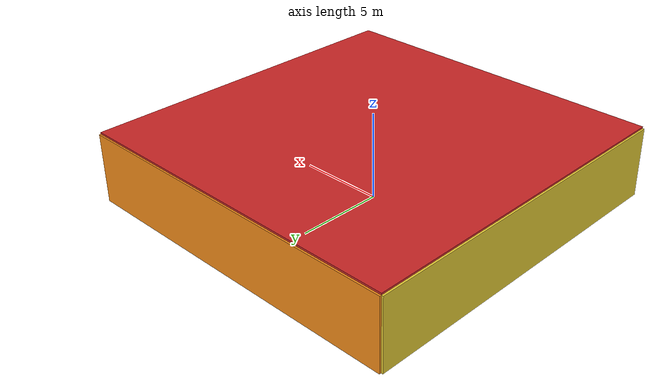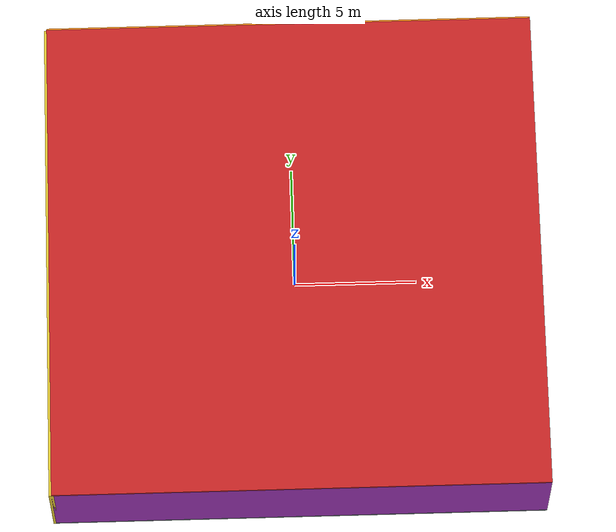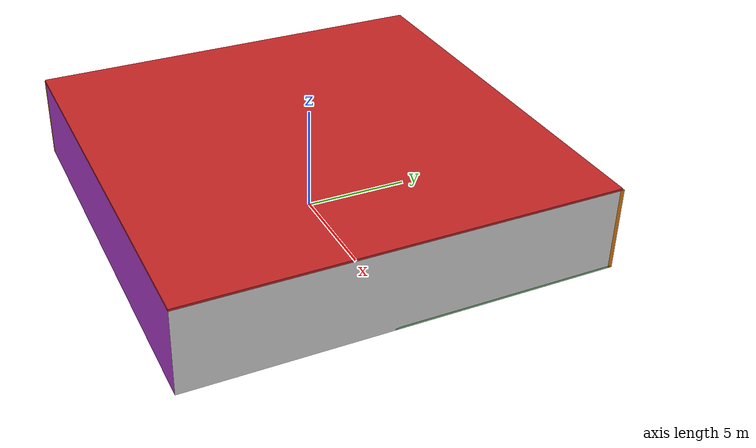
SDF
<sdf version="1.4">
 <world name="default">
  <physics type="ode">
   <max_step_size>0.001</max_step_size>
   <real_time_factor>1</real_time_factor>
   <real_time_update_rate>1000</real_time_update_rate>
   <gravity>0 0 -9.8</gravity>
  </physics>
  <scene><ambient>0.4 0.4 0.4 1</ambient><background>0.7 0.7 0.7 1</background><shadows>1</shadows></scene>
  <model name="Surrounding">
   <static>1</static>
   <link name="Ceiling">
    <collision name="Ceiling_Collision"><geometry><box><size>20 20 0.1</size></box></geometry></collision>
    <visual name="Ceiling_Visual">
     <geometry><box><size>20 20 0.1</size></box></geometry>
     <material>
      <script><uri>file://media/materials/scripts/gazebo.material</uri><name>Gazebo/Red</name></script>
     </material>
    </visual>
    <pose>0 0 4.05 0 0 0</pose>
   </link>
   <link name="Wall_South">
    <collision name="Wall_South_Collision">
     <geometry><box><size>20 0 4</size></box></geometry>
     <pose>0 0 2 0 -0 0</pose>
    </collision>
    <visual name="Wall_South_Visual">
     <pose>0 0 2 0 -0 0</pose>
     <geometry><box><size>20 0 4</size></box></geometry>
     <material>
      <script><uri>file://media/materials/scripts/gazebo.material</uri><name>Gazebo/PurpleGlow</name></script>
     </material>
    </visual>
    <velocity_decay><linear>0</linear><angular>0</angular></velocity_decay>
    <pose>0 -10 0 0 -0 0</pose>
   </link>
   <link name="Wall_East">
    <collision name="Wall_21_Collision">
     <geometry><box><size>20 0 4</size></box></geometry>
     <pose>0 0 2 0 -0 0</pose>
    </collision>
    <visual name="Wall_21_Visual">
     <pose>0 0 2 0 -0 0</pose>
     <geometry><box><size>20 0 4</size></box></geometry>
     <material>
      <script><uri>file://media/materials/scripts/gazebo.material</uri><name>Gazebo/White</name></script>
     </material>
    </visual>
    <velocity_decay><linear>0</linear><angular>0</angular></velocity_decay>
    <pose>10 0 0 0 -0 1.5708</pose>
   </link>
   <link name="Wall_North">
    <collision name="Wall_22_Collision">
     <geometry><box><size>20 0.2 4</size></box></geometry>
     <pose>0 0 2 0 -0 0</pose>
    </collision>
    <visual name="Wall_22_Visual">
     <pose>0 0 2 0 -0 0</pose>
     <geometry><box><size>20 0.2 4</size></box></geometry>
     <material>
      <script><uri>file://media/materials/scripts/gazebo.material</uri><name>Gazebo/Orange</name></script>
     </material>
    </visual>
    <velocity_decay><linear>0</linear><angular>0</angular></velocity_decay>
    <pose>0 10 0 0 -0 0</pose>
   </link>
   <link name="Wall_West">
    <collision name="Wall_23_Collision">
     <geometry><box><size>20 0.2 4</size></box></geometry>
     <pose>0 0 2 0 -0 0</pose>
    </collision>
    <visual name="Wall_23_Visual">
     <pose>0 0 2 0 -0 0</pose>
     <geometry><box><size>20 0.2 4</size></box></geometry>
     <material>
      <script><uri>file://media/materials/scripts/gazebo.material</uri><name>Gazebo/ZincYellow</name></script>
     </material>
    </visual>
    <velocity_decay><linear>0</linear><angular>0</angular></velocity_decay>
    <pose>-10 0 0 0 0 -1.5708</pose>
   </link>
   <link name="Ground_link">
    <collision name="collision">
     <pose>0 0 .05 0 -0 0</pose>
     <geometry><box><size>20 20 0.1</size></box></geometry>
    </collision>
    <visual name="visual">
     <pose>0 0 .05 0 -0 0</pose>
     <geometry><box><size>20 20 0.1</size></box></geometry>
     <material>
      <script><uri>file://media/materials/scripts/gazebo.material</uri><name>Gazebo/GreenTransparent</name></script>
     </material>
    </visual>
   </link>
   <static>1</static>
  </model>
  <spherical_coordinates>
   <surface_model>EARTH_WGS84</surface_model>
   <latitude_deg>0</latitude_deg>
   <longitude_deg>0</longitude_deg>
   <elevation>0</elevation>
   <heading_deg>0</heading_deg>
  </spherical_coordinates>
  <light name="lightball_0" type="diffuse">
   <diffuse>0.8 0.8 0.8 1</diffuse>
   <specular>0.2 0.2 0.2 1</specular>
   <attenuation>
    <range>100</range>
    <constant>0.7</constant>
    <linear>0.01</linear>
    <quadratic>0.001</quadratic>
   </attenuation>
   <direction>-0.5 0.1 -0.9</direction>
   <pose>-1.16303491898 7.35125877605 2.83278229288 0 0 0</pose>
  </light>
  <light name="lightball_1" type="diffuse">
   <diffuse>0.8 0.8 0.8 1</diffuse>
   <specular>0.2 0.2 0.2 1</specular>
   <attenuation>
    <range>100</range>
    <constant>0.7</constant>
    <linear>0.01</linear>
    <quadratic>0.001</quadratic>
   </attenuation>
   <direction>-0.5 0.1 -0.9</direction>
   <pose>5.98411770264 3.14699670936 3.88017580726 0 0 0</pose>
  </light>
  <light name="lightball_2" type="diffuse">
   <diffuse>0.8 0.8 0.8 1</diffuse>
   <specular>0.2 0.2 0.2 1</specular>
   <attenuation>
    <range>100</range>
    <constant>0.7</constant>
    <linear>0.01</linear>
    <quadratic>0.001</quadratic>
   </attenuation>
   <direction>-0.5 0.1 -0.9</direction>
   <pose>2.58094430508 -5.77512515647 2.2123158266 0 0 0</pose>
  </light>
  <light name="lightball_3" type="diffuse">
   <diffuse>0.8 0.8 0.8 1</diffuse>
   <specular>0.2 0.2 0.2 1</specular>
   <attenuation>
    <range>100</range>
    <constant>0.7</constant>
    <linear>0.01</linear>
    <quadratic>0.001</quadratic>
   </attenuation>
   <direction>-0.5 0.1 -0.9</direction>
   <pose>3.10174319447 9.0668023358 1.74289094701 0 0 0</pose>
  </light>
  <light name="lightball_4" type="diffuse">
   <diffuse>0.8 0.8 0.8 1</diffuse>
   <specular>0.2 0.2 0.2 1</specular>
   <attenuation>
    <range>100</range>
    <constant>0.7</constant>
    <linear>0.01</linear>
    <quadratic>0.001</quadratic>
   </attenuation>
   <direction>-0.5 0.1 -0.9</direction>
   <pose>-4.37765519419 3.06608582307 2.0691743888 0 0 0</pose>
  </light>
  <light name="lightball_5" type="diffuse">
   <diffuse>0.8 0.8 0.8 1</diffuse>
   <specular>0.2 0.2 0.2 1</specular>
   <attenuation>
    <range>100</range>
    <constant>0.7</constant>
    <linear>0.01</linear>
    <quadratic>0.001</quadratic>
   </attenuation>
   <direction>-0.5 0.1 -0.9</direction>
   <pose>-6.85911430937 -4.81520291047 2.95700109602 0 0 0</pose>
  </light>
  <light name="lightball_6" type="diffuse">
   <diffuse>0.8 0.8 0.8 1</diffuse>
   <specular>0.2 0.2 0.2 1</specular>
   <attenuation>
    <range>100</range>
    <constant>0.7</constant>
    <linear>0.01</linear>
    <quadratic>0.001</quadratic>
   </attenuation>
   <direction>-0.5 0.1 -0.9</direction>
   <pose>-9.39248016083 -0.923612164241 1.49611869799 0 0 0</pose>
  </light>
  <light name="lightball_7" type="diffuse">
   <diffuse>0.8 0.8 0.8 1</diffuse>
   <specular>0.2 0.2 0.2 1</specular>
   <attenuation>
    <range>100</range>
    <constant>0.7</constant>
    <linear>0.01</linear>
    <quadratic>0.001</quadratic>
   </attenuation>
   <direction>-0.5 0.1 -0.9</direction>
   <pose>-6.37114798841 -5.62696637903 1.64507482913 0 0 0</pose>
  </light>
  <light name="lightball_8" type="diffuse">
   <diffuse>0.8 0.8 0.8 1</diffuse>
   <specular>0.2 0.2 0.2 1</specular>
   <attenuation>
    <range>100</range>
    <constant>0.7</constant>
    <linear>0.01</linear>
    <quadratic>0.001</quadratic>
   </attenuation>
   <direction>-0.5 0.1 -0.9</direction>
   <pose>1.63007381941 3.48228770335 1.39783686526 0 0 0</pose>
  </light>
  <light name="lightball_9" type="diffuse">
   <diffuse>0.8 0.8 0.8 1</diffuse>
   <specular>0.2 0.2 0.2 1</specular>
   <attenuation>
    <range>100</range>
    <constant>0.7</constant>
    <linear>0.01</linear>
    <quadratic>0.001</quadratic>
   </attenuation>
   <direction>-0.5 0.1 -0.9</direction>
   <pose>-9.16545845252 -6.01819965287 3.17058905322 0 0 0</pose>
  </light>
  <light name="lightball_10" type="diffuse">
   <diffuse>0.8 0.8 0.8 1</diffuse>
   <specular>0.2 0.2 0.2 1</specular>
   <attenuation>
    <range>100</range>
    <constant>0.7</constant>
    <linear>0.01</linear>
    <quadratic>0.001</quadratic>
   </attenuation>
   <direction>-0.5 0.1 -0.9</direction>
   <pose>6.34782064444 -8.02098809392 2.71317565943 0 0 0</pose>
  </light>
  <light name="lightball_11" type="diffuse">
   <diffuse>0.8 0.8 0.8 1</diffuse>
   <specular>0.2 0.2 0.2 1</specular>
   <attenuation>
    <range>100</range>
    <constant>0.7</constant>
    <linear>0.01</linear>
    <quadratic>0.001</quadratic>
   </attenuation>
   <direction>-0.5 0.1 -0.9</direction>
   <pose>-3.24014484176 -3.38630654708 3.82215310602 0 0 0</pose>
  </light>
  <light name="lightball_12" type="diffuse">
   <diffuse>0.8 0.8 0.8 1</diffuse>
   <specular>0.2 0.2 0.2 1</specular>
   <attenuation>
    <range>100</range>
    <constant>0.7</constant>
    <linear>0.01</linear>
    <quadratic>0.001</quadratic>
   </attenuation>
   <direction>-0.5 0.1 -0.9</direction>
   <pose>-0.823762822414 -8.96580299479 3.30586021993 0 0 0</pose>
  </light>
  <light name="lightball_13" type="diffuse">
   <diffuse>0.8 0.8 0.8 1</diffuse>
   <specular>0.2 0.2 0.2 1</specular>
   <attenuation>
    <range>100</range>
    <constant>0.7</constant>
    <linear>0.01</linear>
    <quadratic>0.001</quadratic>
   </attenuation>
   <direction>-0.5 0.1 -0.9</direction>
   <pose>8.68401039558 0.710300349831 1.76950669032 0 0 0</pose>
  </light>
  <include><uri>model://cabinet</uri><pose>-1.7831545438 -7.39708215043 0 0 0 0.0934246298798</pose></include>
  <include><uri>model://table</uri><pose>-1.65734907702 -3.89648814034 0 0 0 0.936272564596</pose></include>
  <include><uri>model://cabinet</uri><pose>-0.711116746721 7.9673606287 0 0 0 0.441567599728</pose></include>
  <include>
   <uri>model://construction_cone</uri>
   <pose>1.80645464889 -8.21084402906 0 0 0 2.21995523238</pose>
  </include>
  <include><uri>model://table</uri><pose>5.01070436626 7.83279217275 0 0 0 1.85250129251</pose></include>
  <include><uri>model://cabinet</uri><pose>7.2370192161 -5.09900953589 0 0 0 2.62709910527</pose></include>
 </world>
</sdf>

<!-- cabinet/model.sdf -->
<sdf version="1.5">
  <model name="cabinet">
    <static>true</static>
    <link name="cabinet_bottom_plate">
      <inertial>
        <pose>0 0 -1 0 0 0</pose>
        <inertia>
          <ixx>2.050000</ixx>
          <ixy>0</ixy>
          <ixz>0</ixz>
          <iyy>2.050000</iyy>
          <iyz>0</iyz>
          <izz>2.050000</izz>
        </inertia>
        <mass>25.000000</mass>
      </inertial>
      <collision name="cabinet_bottom_plate_geom">
        <pose>0 0 0.010000 0 0 0</pose>
        <geometry>
          <box>
            <size>0.450000 0.450000 0.020000</size>
          </box>
        </geometry>
      </collision>
      <visual name="cabinet_bottom_plate_geom_visual">
        <pose>0 0 0.010000 0 0 0</pose>
        <geometry>
          <box>
            <size>0.450000 0.450000 0.020000</size>
          </box>
        </geometry>
        <material>
          <script>
            <uri>model://media/materials/scripts/gazebo.material</uri>
            <name>Gazebo/Wood</name>
          </script>
        </material>
      </visual>
      <collision name="cabinet_bottom_plate_geom_cabinet_back_plate">
        <pose>0.235000 0 0.510000 0 0 0</pose>
        <geometry>
          <box>
            <size>0.020000 0.450000 1.020000</size>
          </box>
        </geometry>
      </collision>
      <visual name="cabinet_bottom_plate_geom_cabinet_back_plate_visual">
        <pose>0.235000 0 0.510000 0 0 0</pose>
        <geometry>
          <box>
            <size>0.020000 0.450000 1.020000</size>
          </box>
        </geometry>
        <material>
          <script>
            <uri>model://media/materials/scripts/gazebo.material</uri>
            <name>Gazebo/Wood</name>
          </script>
        </material>
      </visual>
      <collision name="cabinet_bottom_plate_geom_cabinet_left_plate">
        <pose>0 0.235000 0.510000 0 0 0</pose>
        <geometry>
          <box>
            <size>0.450000 0.020000 1.020000</size>
          </box>
        </geometry>
      </collision>
      <visual name="cabinet_bottom_plate_geom_cabinet_left_plate_visual">
        <pose>0 0.235000 0.510000 0 0 0</pose>
        <geometry>
          <box>
            <size>0.450000 0.020000 1.020000</size>
          </box>
        </geometry>
        <material>
          <script>
            <uri>model://media/materials/scripts/gazebo.material</uri>
            <name>Gazebo/Wood</name>
          </script>
        </material>
      </visual>
      <collision name="cabinet_bottom_plate_geom_cabinet_middle_plate">
        <pose>0 0 0.510000 0 0 0</pose>
        <geometry>
          <box>
            <size>0.450000 0.450000 0.020000</size>
          </box>
        </geometry>
      </collision>
      <visual name="cabinet_bottom_plate_geom_cabinet_middle_plate_visual">
        <pose>0 0 0.510000 0 0 0</pose>
        <geometry>
          <box>
            <size>0.450000 0.450000 0.020000</size>
          </box>
        </geometry>
        <material>
          <script>
            <uri>model://media/materials/scripts/gazebo.material</uri>
            <name>Gazebo/Wood</name>
          </script>
        </material>
      </visual>
      <collision name="cabinet_bottom_plate_geom_cabinet_right_plate">
        <pose>0 -0.235000 0.510000 0 0 0</pose>
        <geometry>
          <box>
            <size>0.450000 0.020000 1.020000</size>
          </box>
        </geometry>
      </collision>
      <visual name="cabinet_bottom_plate_geom_cabinet_right_plate_visual">
        <pose>0 -0.235000 0.510000 0 0 0</pose>
        <geometry>
          <box>
            <size>0.450000 0.020000 1.020000</size>
          </box>
        </geometry>
        <material>
          <script>
            <uri>model://media/materials/scripts/gazebo.material</uri>
            <name>Gazebo/Wood</name>
          </script>
        </material>
      </visual>
      <collision name="cabinet_bottom_plate_geom_cabinet_top_plate">
        <pose>0 0 1.010000 0 0 0</pose>
        <geometry>
          <box>
            <size>0.450000 0.450000 0.020000</size>
          </box>
        </geometry>
      </collision>
      <visual name="cabinet_bottom_plate_geom_cabinet_top_plate_visual">
        <pose>0 0 1.010000 0 0 0</pose>
        <geometry>
          <box>
            <size>0.450000 0.450000 0.020000</size>
          </box>
        </geometry>
        <material>
          <script>
            <uri>model://media/materials/scripts/gazebo.material</uri>
            <name>Gazebo/Wood</name>
          </script>
        </material>
      </visual>
    </link>
  </model>
</sdf>

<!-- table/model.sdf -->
<sdf version="1.5">
  <model name="table">
    <static>true</static>
    <link name="link">
      <collision name="surface">
        <pose>0 0 1.0 0 0 0</pose>
        <geometry>
          <box>
            <size>1.5 0.8 0.03</size>
          </box>
        </geometry>
        <surface>
          <friction>
            <ode>
              <mu>0.6</mu>
              <mu2>0.6</mu2>
            </ode>
          </friction>
        </surface>
      </collision>
      <visual name="visual1">
        <pose>0 0 1.0 0 0 0</pose>
        <geometry>
          <box>
            <size>1.5 0.8 0.03</size>
          </box>
        </geometry>
        <material>
          <script>
            <uri>model://media/materials/scripts/gazebo.material</uri>
            <name>Gazebo/Wood</name>
          </script>
        </material>
      </visual>
      <collision name="front_left_leg">
        <pose>0.68 0.38 0.5 0 0 0</pose>
        <geometry>
          <cylinder>
            <radius>0.02</radius>
            <length>1.0</length>
          </cylinder>
        </geometry>
      </collision>
      <visual name="front_left_leg">
        <pose>0.68 0.38 0.5 0 0 0</pose>
        <geometry>
          <cylinder>
            <radius>0.02</radius>
            <length>1.0</length>
          </cylinder>
        </geometry>
        <material>
          <script>
            <uri>model://media/materials/scripts/gazebo.material</uri>
            <name>Gazebo/Grey</name>
          </script>
        </material>
      </visual>
      <collision name="front_right_leg">
        <pose>0.68 -0.38 0.5 0 0 0</pose>
        <geometry>
          <cylinder>
            <radius>0.02</radius>
            <length>1.0</length>
          </cylinder>
        </geometry>
      </collision>
      <visual name="front_right_leg">
        <pose>0.68 -0.38 0.5 0 0 0</pose>
        <geometry>
          <cylinder>
            <radius>0.02</radius>
            <length>1.0</length>
          </cylinder>
        </geometry>
        <material>
          <script>
            <uri>model://media/materials/scripts/gazebo.material</uri>
            <name>Gazebo/Grey</name>
          </script>
        </material>
      </visual>
      <collision name="back_right_leg">
        <pose>-0.68 -0.38 0.5 0 0 0</pose>
        <geometry>
          <cylinder>
            <radius>0.02</radius>
            <length>1.0</length>
          </cylinder>
        </geometry>
      </collision>
      <visual name="back_right_leg">
        <pose>-0.68 -0.38 0.5 0 0 0</pose>
        <geometry>
          <cylinder>
            <radius>0.02</radius>
            <length>1.0</length>
          </cylinder>
        </geometry>
        <material>
          <script>
            <uri>model://media/materials/scripts/gazebo.material</uri>
            <name>Gazebo/Grey</name>
          </script>
        </material>
      </visual>
      <collision name="back_left_leg">
        <pose>-0.68 0.38 0.5 0 0 0</pose>
        <geometry>
          <cylinder>
            <radius>0.02</radius>
            <length>1.0</length>
          </cylinder>
        </geometry>
      </collision>
      <visual name="back_left_leg">
        <pose>-0.68 0.38 0.5 0 0 0</pose>
        <geometry>
          <cylinder>
            <radius>0.02</radius>
            <length>1.0</length>
          </cylinder>
        </geometry>
        <material>
          <script>
            <uri>model://media/materials/scripts/gazebo.material</uri>
            <name>Gazebo/Grey</name>
          </script>
        </material>
      </visual>
    </link>
  </model>
</sdf>

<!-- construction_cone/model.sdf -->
<sdf version="1.5">
  <model name="Construction Cone">
    <link name="link">
      <collision name="collision">
        <geometry>
          <mesh>
            <scale>10 10 10</scale>
            <uri>file://isr-testbed/construction_cone/meshes/construction_cone.dae</uri>
          </mesh>
        </geometry>
      </collision>
      <visual name="visual">
        <geometry>
          <mesh>
            <scale>10 10 10</scale>
            <uri>file://isr-testbed/construction_cone/meshes/construction_cone.dae</uri>
          </mesh>
        </geometry>
      </visual>
    </link>
  </model>
</sdf>
